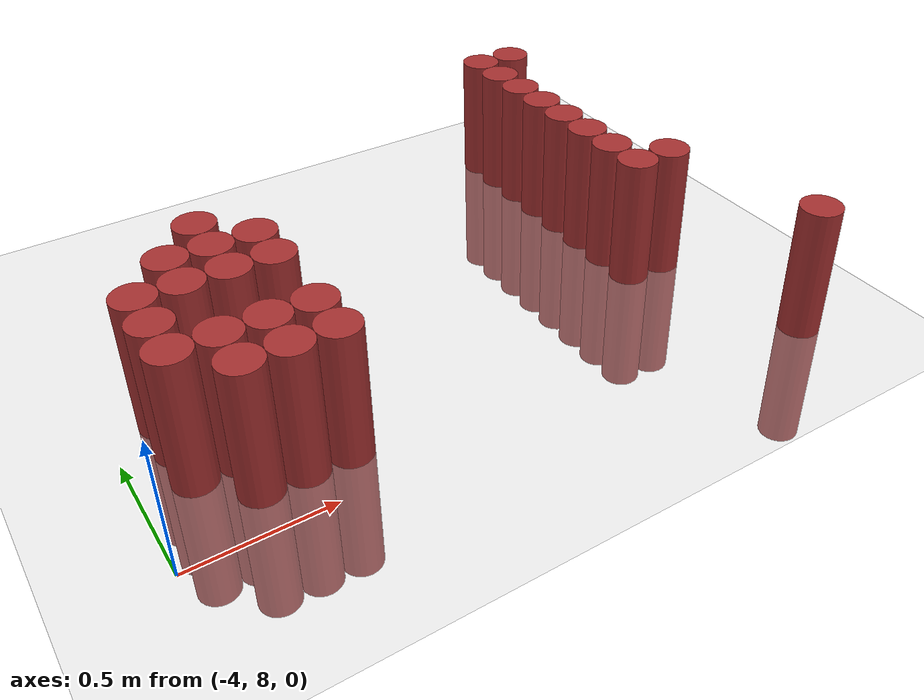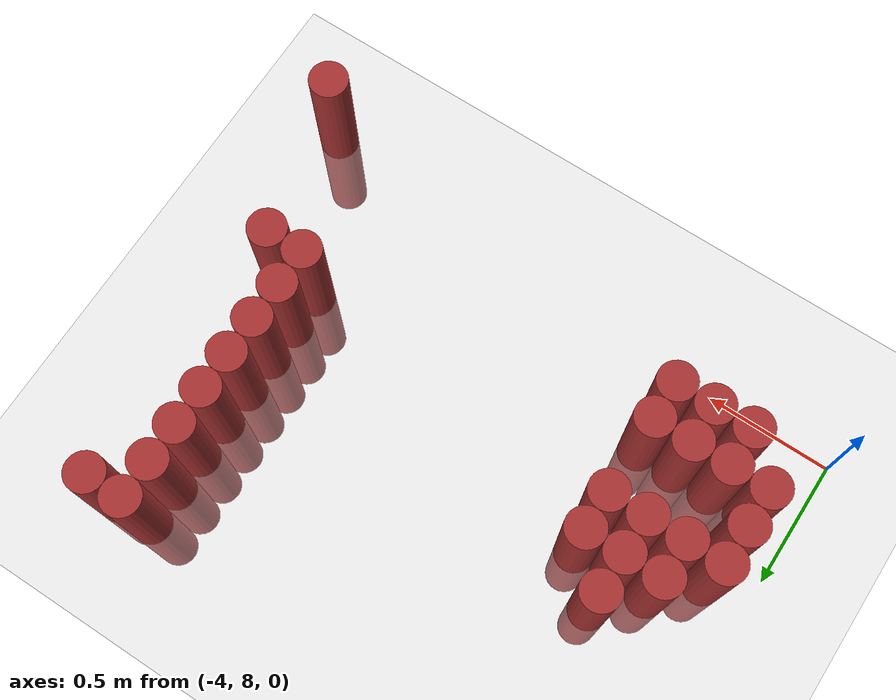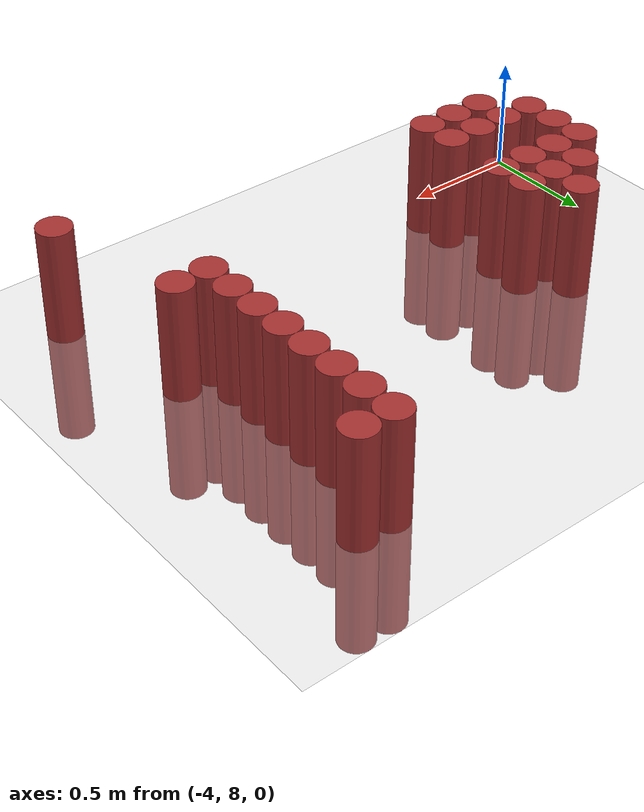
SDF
<sdf version="1.6">
 <world name="default">
  <model name="ground_plane">
   <static>1</static>
   <link name="link">
    <collision name="collision">
     <geometry><plane><normal>0 0 1</normal><size>100 100</size></plane></geometry>
     <surface><friction><ode><mu>100</mu><mu2>50</mu2></ode></friction></surface>
    </collision>
    <visual name="visual">
     <cast_shadows>0</cast_shadows>
     <geometry><plane><normal>0 0 1</normal><size>100 100</size></plane></geometry>
     <material>
      <script><uri>file://media/materials/scripts/gazebo.material</uri><name>Gazebo/Grey</name></script>
     </material>
    </visual>
   </link>
  </model>
  <model name="unit_cylinder_258">
   <static>1</static>
   <pose>-3.825000 8.325000 0.000000 0.000000 0.000000 0.000000</pose>
   <link name="link">
    <inertial>
     <mass>1</mass>
     <inertia><ixx>0.145833</ixx><ixy>0</ixy><ixz>0</ixz><iyy>0.145833</iyy><iyz>0</iyz><izz>0.125</izz></inertia>
    </inertial>
    <collision name="collision">
     <geometry><cylinder><radius>0.075000</radius><length>1</length></cylinder></geometry>
    </collision>
    <visual name="visual">
     <geometry><cylinder><radius>0.075000</radius><length>1</length></cylinder></geometry>
     <material>
      <ambient>0.648000 0.192000 0.192000 1</ambient>
      <diffuse>0.648000 0.192000 0.192000 1</diffuse>
     </material>
     <material>
      <script><name>Gazebo/Grey</name><uri>file://media/materials/scripts/gazebo.material</uri></script>
     </material>
    </visual>
   </link>
  </model>
  <model name="unit_cylinder_259">
   <static>1</static>
   <pose>-3.825000 8.475000 0.000000 0.000000 0.000000 0.000000</pose>
   <link name="link">
    <inertial>
     <mass>1</mass>
     <inertia><ixx>0.145833</ixx><ixy>0</ixy><ixz>0</ixz><iyy>0.145833</iyy><iyz>0</iyz><izz>0.125</izz></inertia>
    </inertial>
    <collision name="collision">
     <geometry><cylinder><radius>0.075000</radius><length>1</length></cylinder></geometry>
    </collision>
    <visual name="visual">
     <geometry><cylinder><radius>0.075000</radius><length>1</length></cylinder></geometry>
     <material>
      <ambient>0.648000 0.192000 0.192000 1</ambient>
      <diffuse>0.648000 0.192000 0.192000 1</diffuse>
     </material>
     <material>
      <script><name>Gazebo/Grey</name><uri>file://media/materials/scripts/gazebo.material</uri></script>
     </material>
    </visual>
   </link>
  </model>
  <model name="unit_cylinder_260">
   <static>1</static>
   <pose>-3.825000 8.625000 0.000000 0.000000 0.000000 0.000000</pose>
   <link name="link">
    <inertial>
     <mass>1</mass>
     <inertia><ixx>0.145833</ixx><ixy>0</ixy><ixz>0</ixz><iyy>0.145833</iyy><iyz>0</iyz><izz>0.125</izz></inertia>
    </inertial>
    <collision name="collision">
     <geometry><cylinder><radius>0.075000</radius><length>1</length></cylinder></geometry>
    </collision>
    <visual name="visual">
     <geometry><cylinder><radius>0.075000</radius><length>1</length></cylinder></geometry>
     <material>
      <ambient>0.648000 0.192000 0.192000 1</ambient>
      <diffuse>0.648000 0.192000 0.192000 1</diffuse>
     </material>
     <material>
      <script><name>Gazebo/Grey</name><uri>file://media/materials/scripts/gazebo.material</uri></script>
     </material>
    </visual>
   </link>
  </model>
  <model name="unit_cylinder_267">
   <static>1</static>
   <pose>-3.675000 8.175000 0.000000 0.000000 0.000000 0.000000</pose>
   <link name="link">
    <inertial>
     <mass>1</mass>
     <inertia><ixx>0.145833</ixx><ixy>0</ixy><ixz>0</ixz><iyy>0.145833</iyy><iyz>0</iyz><izz>0.125</izz></inertia>
    </inertial>
    <collision name="collision">
     <geometry><cylinder><radius>0.075000</radius><length>1</length></cylinder></geometry>
    </collision>
    <visual name="visual">
     <geometry><cylinder><radius>0.075000</radius><length>1</length></cylinder></geometry>
     <material>
      <ambient>0.648000 0.192000 0.192000 1</ambient>
      <diffuse>0.648000 0.192000 0.192000 1</diffuse>
     </material>
     <material>
      <script><name>Gazebo/Grey</name><uri>file://media/materials/scripts/gazebo.material</uri></script>
     </material>
    </visual>
   </link>
  </model>
  <model name="unit_cylinder_268">
   <static>1</static>
   <pose>-3.675000 8.325000 0.000000 0.000000 0.000000 0.000000</pose>
   <link name="link">
    <inertial>
     <mass>1</mass>
     <inertia><ixx>0.145833</ixx><ixy>0</ixy><ixz>0</ixz><iyy>0.145833</iyy><iyz>0</iyz><izz>0.125</izz></inertia>
    </inertial>
    <collision name="collision">
     <geometry><cylinder><radius>0.075000</radius><length>1</length></cylinder></geometry>
    </collision>
    <visual name="visual">
     <geometry><cylinder><radius>0.075000</radius><length>1</length></cylinder></geometry>
     <material>
      <ambient>0.648000 0.192000 0.192000 1</ambient>
      <diffuse>0.648000 0.192000 0.192000 1</diffuse>
     </material>
     <material>
      <script><name>Gazebo/Grey</name><uri>file://media/materials/scripts/gazebo.material</uri></script>
     </material>
    </visual>
   </link>
  </model>
  <model name="unit_cylinder_269">
   <static>1</static>
   <pose>-3.675000 8.625000 0.000000 0.000000 0.000000 0.000000</pose>
   <link name="link">
    <inertial>
     <mass>1</mass>
     <inertia><ixx>0.145833</ixx><ixy>0</ixy><ixz>0</ixz><iyy>0.145833</iyy><iyz>0</iyz><izz>0.125</izz></inertia>
    </inertial>
    <collision name="collision">
     <geometry><cylinder><radius>0.075000</radius><length>1</length></cylinder></geometry>
    </collision>
    <visual name="visual">
     <geometry><cylinder><radius>0.075000</radius><length>1</length></cylinder></geometry>
     <material>
      <ambient>0.648000 0.192000 0.192000 1</ambient>
      <diffuse>0.648000 0.192000 0.192000 1</diffuse>
     </material>
     <material>
      <script><name>Gazebo/Grey</name><uri>file://media/materials/scripts/gazebo.material</uri></script>
     </material>
    </visual>
   </link>
  </model>
  <model name="unit_cylinder_270">
   <static>1</static>
   <pose>-3.675000 8.775000 0.000000 0.000000 0.000000 0.000000</pose>
   <link name="link">
    <inertial>
     <mass>1</mass>
     <inertia><ixx>0.145833</ixx><ixy>0</ixy><ixz>0</ixz><iyy>0.145833</iyy><iyz>0</iyz><izz>0.125</izz></inertia>
    </inertial>
    <collision name="collision">
     <geometry><cylinder><radius>0.075000</radius><length>1</length></cylinder></geometry>
    </collision>
    <visual name="visual">
     <geometry><cylinder><radius>0.075000</radius><length>1</length></cylinder></geometry>
     <material>
      <ambient>0.648000 0.192000 0.192000 1</ambient>
      <diffuse>0.648000 0.192000 0.192000 1</diffuse>
     </material>
     <material>
      <script><name>Gazebo/Grey</name><uri>file://media/materials/scripts/gazebo.material</uri></script>
     </material>
    </visual>
   </link>
  </model>
  <model name="unit_cylinder_273">
   <static>1</static>
   <pose>-3.525000 8.175000 0.000000 0.000000 0.000000 0.000000</pose>
   <link name="link">
    <inertial>
     <mass>1</mass>
     <inertia><ixx>0.145833</ixx><ixy>0</ixy><ixz>0</ixz><iyy>0.145833</iyy><iyz>0</iyz><izz>0.125</izz></inertia>
    </inertial>
    <collision name="collision">
     <geometry><cylinder><radius>0.075000</radius><length>1</length></cylinder></geometry>
    </collision>
    <visual name="visual">
     <geometry><cylinder><radius>0.075000</radius><length>1</length></cylinder></geometry>
     <material>
      <ambient>0.648000 0.192000 0.192000 1</ambient>
      <diffuse>0.648000 0.192000 0.192000 1</diffuse>
     </material>
     <material>
      <script><name>Gazebo/Grey</name><uri>file://media/materials/scripts/gazebo.material</uri></script>
     </material>
    </visual>
   </link>
  </model>
  <model name="unit_cylinder_274">
   <static>1</static>
   <pose>-3.525000 8.325000 0.000000 0.000000 0.000000 0.000000</pose>
   <link name="link">
    <inertial>
     <mass>1</mass>
     <inertia><ixx>0.145833</ixx><ixy>0</ixy><ixz>0</ixz><iyy>0.145833</iyy><iyz>0</iyz><izz>0.125</izz></inertia>
    </inertial>
    <collision name="collision">
     <geometry><cylinder><radius>0.075000</radius><length>1</length></cylinder></geometry>
    </collision>
    <visual name="visual">
     <geometry><cylinder><radius>0.075000</radius><length>1</length></cylinder></geometry>
     <material>
      <ambient>0.648000 0.192000 0.192000 1</ambient>
      <diffuse>0.648000 0.192000 0.192000 1</diffuse>
     </material>
     <material>
      <script><name>Gazebo/Grey</name><uri>file://media/materials/scripts/gazebo.material</uri></script>
     </material>
    </visual>
   </link>
  </model>
  <model name="unit_cylinder_275">
   <static>1</static>
   <pose>-3.525000 8.625000 0.000000 0.000000 0.000000 0.000000</pose>
   <link name="link">
    <inertial>
     <mass>1</mass>
     <inertia><ixx>0.145833</ixx><ixy>0</ixy><ixz>0</ixz><iyy>0.145833</iyy><iyz>0</iyz><izz>0.125</izz></inertia>
    </inertial>
    <collision name="collision">
     <geometry><cylinder><radius>0.075000</radius><length>1</length></cylinder></geometry>
    </collision>
    <visual name="visual">
     <geometry><cylinder><radius>0.075000</radius><length>1</length></cylinder></geometry>
     <material>
      <ambient>0.648000 0.192000 0.192000 1</ambient>
      <diffuse>0.648000 0.192000 0.192000 1</diffuse>
     </material>
     <material>
      <script><name>Gazebo/Grey</name><uri>file://media/materials/scripts/gazebo.material</uri></script>
     </material>
    </visual>
   </link>
  </model>
  <model name="unit_cylinder_276">
   <static>1</static>
   <pose>-3.525000 8.775000 0.000000 0.000000 0.000000 0.000000</pose>
   <link name="link">
    <inertial>
     <mass>1</mass>
     <inertia><ixx>0.145833</ixx><ixy>0</ixy><ixz>0</ixz><iyy>0.145833</iyy><iyz>0</iyz><izz>0.125</izz></inertia>
    </inertial>
    <collision name="collision">
     <geometry><cylinder><radius>0.075000</radius><length>1</length></cylinder></geometry>
    </collision>
    <visual name="visual">
     <geometry><cylinder><radius>0.075000</radius><length>1</length></cylinder></geometry>
     <material>
      <ambient>0.648000 0.192000 0.192000 1</ambient>
      <diffuse>0.648000 0.192000 0.192000 1</diffuse>
     </material>
     <material>
      <script><name>Gazebo/Grey</name><uri>file://media/materials/scripts/gazebo.material</uri></script>
     </material>
    </visual>
   </link>
  </model>
  <model name="unit_cylinder_277">
   <static>1</static>
   <pose>-3.525000 8.925000 0.000000 0.000000 0.000000 0.000000</pose>
   <link name="link">
    <inertial>
     <mass>1</mass>
     <inertia><ixx>0.145833</ixx><ixy>0</ixy><ixz>0</ixz><iyy>0.145833</iyy><iyz>0</iyz><izz>0.125</izz></inertia>
    </inertial>
    <collision name="collision">
     <geometry><cylinder><radius>0.075000</radius><length>1</length></cylinder></geometry>
    </collision>
    <visual name="visual">
     <geometry><cylinder><radius>0.075000</radius><length>1</length></cylinder></geometry>
     <material>
      <ambient>0.648000 0.192000 0.192000 1</ambient>
      <diffuse>0.648000 0.192000 0.192000 1</diffuse>
     </material>
     <material>
      <script><name>Gazebo/Grey</name><uri>file://media/materials/scripts/gazebo.material</uri></script>
     </material>
    </visual>
   </link>
  </model>
  <model name="unit_cylinder_283">
   <static>1</static>
   <pose>-3.375000 8.175000 0.000000 0.000000 0.000000 0.000000</pose>
   <link name="link">
    <inertial>
     <mass>1</mass>
     <inertia><ixx>0.145833</ixx><ixy>0</ixy><ixz>0</ixz><iyy>0.145833</iyy><iyz>0</iyz><izz>0.125</izz></inertia>
    </inertial>
    <collision name="collision">
     <geometry><cylinder><radius>0.075000</radius><length>1</length></cylinder></geometry>
    </collision>
    <visual name="visual">
     <geometry><cylinder><radius>0.075000</radius><length>1</length></cylinder></geometry>
     <material>
      <ambient>0.648000 0.192000 0.192000 1</ambient>
      <diffuse>0.648000 0.192000 0.192000 1</diffuse>
     </material>
     <material>
      <script><name>Gazebo/Grey</name><uri>file://media/materials/scripts/gazebo.material</uri></script>
     </material>
    </visual>
   </link>
  </model>
  <model name="unit_cylinder_284">
   <static>1</static>
   <pose>-3.375000 8.325000 0.000000 0.000000 0.000000 0.000000</pose>
   <link name="link">
    <inertial>
     <mass>1</mass>
     <inertia><ixx>0.145833</ixx><ixy>0</ixy><ixz>0</ixz><iyy>0.145833</iyy><iyz>0</iyz><izz>0.125</izz></inertia>
    </inertial>
    <collision name="collision">
     <geometry><cylinder><radius>0.075000</radius><length>1</length></cylinder></geometry>
    </collision>
    <visual name="visual">
     <geometry><cylinder><radius>0.075000</radius><length>1</length></cylinder></geometry>
     <material>
      <ambient>0.648000 0.192000 0.192000 1</ambient>
      <diffuse>0.648000 0.192000 0.192000 1</diffuse>
     </material>
     <material>
      <script><name>Gazebo/Grey</name><uri>file://media/materials/scripts/gazebo.material</uri></script>
     </material>
    </visual>
   </link>
  </model>
  <model name="unit_cylinder_285">
   <static>1</static>
   <pose>-3.375000 8.625000 0.000000 0.000000 0.000000 0.000000</pose>
   <link name="link">
    <inertial>
     <mass>1</mass>
     <inertia><ixx>0.145833</ixx><ixy>0</ixy><ixz>0</ixz><iyy>0.145833</iyy><iyz>0</iyz><izz>0.125</izz></inertia>
    </inertial>
    <collision name="collision">
     <geometry><cylinder><radius>0.075000</radius><length>1</length></cylinder></geometry>
    </collision>
    <visual name="visual">
     <geometry><cylinder><radius>0.075000</radius><length>1</length></cylinder></geometry>
     <material>
      <ambient>0.648000 0.192000 0.192000 1</ambient>
      <diffuse>0.648000 0.192000 0.192000 1</diffuse>
     </material>
     <material>
      <script><name>Gazebo/Grey</name><uri>file://media/materials/scripts/gazebo.material</uri></script>
     </material>
    </visual>
   </link>
  </model>
  <model name="unit_cylinder_286">
   <static>1</static>
   <pose>-3.375000 8.775000 0.000000 0.000000 0.000000 0.000000</pose>
   <link name="link">
    <inertial>
     <mass>1</mass>
     <inertia><ixx>0.145833</ixx><ixy>0</ixy><ixz>0</ixz><iyy>0.145833</iyy><iyz>0</iyz><izz>0.125</izz></inertia>
    </inertial>
    <collision name="collision">
     <geometry><cylinder><radius>0.075000</radius><length>1</length></cylinder></geometry>
    </collision>
    <visual name="visual">
     <geometry><cylinder><radius>0.075000</radius><length>1</length></cylinder></geometry>
     <material>
      <ambient>0.648000 0.192000 0.192000 1</ambient>
      <diffuse>0.648000 0.192000 0.192000 1</diffuse>
     </material>
     <material>
      <script><name>Gazebo/Grey</name><uri>file://media/materials/scripts/gazebo.material</uri></script>
     </material>
    </visual>
   </link>
  </model>
  <model name="unit_cylinder_296">
   <static>1</static>
   <pose>-2.025000 8.475000 0.000000 0.000000 0.000000 0.000000</pose>
   <link name="link">
    <inertial>
     <mass>1</mass>
     <inertia><ixx>0.145833</ixx><ixy>0</ixy><ixz>0</ixz><iyy>0.145833</iyy><iyz>0</iyz><izz>0.125</izz></inertia>
    </inertial>
    <collision name="collision">
     <geometry><cylinder><radius>0.075000</radius><length>1</length></cylinder></geometry>
    </collision>
    <visual name="visual">
     <geometry><cylinder><radius>0.075000</radius><length>1</length></cylinder></geometry>
     <material>
      <ambient>0.648000 0.192000 0.192000 1</ambient>
      <diffuse>0.648000 0.192000 0.192000 1</diffuse>
     </material>
     <material>
      <script><name>Gazebo/Grey</name><uri>file://media/materials/scripts/gazebo.material</uri></script>
     </material>
    </visual>
   </link>
  </model>
  <model name="unit_cylinder_297">
   <static>1</static>
   <pose>-2.025000 8.625000 0.000000 0.000000 0.000000 0.000000</pose>
   <link name="link">
    <inertial>
     <mass>1</mass>
     <inertia><ixx>0.145833</ixx><ixy>0</ixy><ixz>0</ixz><iyy>0.145833</iyy><iyz>0</iyz><izz>0.125</izz></inertia>
    </inertial>
    <collision name="collision">
     <geometry><cylinder><radius>0.075000</radius><length>1</length></cylinder></geometry>
    </collision>
    <visual name="visual">
     <geometry><cylinder><radius>0.075000</radius><length>1</length></cylinder></geometry>
     <material>
      <ambient>0.648000 0.192000 0.192000 1</ambient>
      <diffuse>0.648000 0.192000 0.192000 1</diffuse>
     </material>
     <material>
      <script><name>Gazebo/Grey</name><uri>file://media/materials/scripts/gazebo.material</uri></script>
     </material>
    </visual>
   </link>
  </model>
  <model name="unit_cylinder_298">
   <static>1</static>
   <pose>-2.025000 8.775000 0.000000 0.000000 0.000000 0.000000</pose>
   <link name="link">
    <inertial>
     <mass>1</mass>
     <inertia><ixx>0.145833</ixx><ixy>0</ixy><ixz>0</ixz><iyy>0.145833</iyy><iyz>0</iyz><izz>0.125</izz></inertia>
    </inertial>
    <collision name="collision">
     <geometry><cylinder><radius>0.075000</radius><length>1</length></cylinder></geometry>
    </collision>
    <visual name="visual">
     <geometry><cylinder><radius>0.075000</radius><length>1</length></cylinder></geometry>
     <material>
      <ambient>0.648000 0.192000 0.192000 1</ambient>
      <diffuse>0.648000 0.192000 0.192000 1</diffuse>
     </material>
     <material>
      <script><name>Gazebo/Grey</name><uri>file://media/materials/scripts/gazebo.material</uri></script>
     </material>
    </visual>
   </link>
  </model>
  <model name="unit_cylinder_299">
   <static>1</static>
   <pose>-2.025000 8.925000 0.000000 0.000000 0.000000 0.000000</pose>
   <link name="link">
    <inertial>
     <mass>1</mass>
     <inertia><ixx>0.145833</ixx><ixy>0</ixy><ixz>0</ixz><iyy>0.145833</iyy><iyz>0</iyz><izz>0.125</izz></inertia>
    </inertial>
    <collision name="collision">
     <geometry><cylinder><radius>0.075000</radius><length>1</length></cylinder></geometry>
    </collision>
    <visual name="visual">
     <geometry><cylinder><radius>0.075000</radius><length>1</length></cylinder></geometry>
     <material>
      <ambient>0.648000 0.192000 0.192000 1</ambient>
      <diffuse>0.648000 0.192000 0.192000 1</diffuse>
     </material>
     <material>
      <script><name>Gazebo/Grey</name><uri>file://media/materials/scripts/gazebo.material</uri></script>
     </material>
    </visual>
   </link>
  </model>
  <model name="unit_cylinder_300">
   <static>1</static>
   <pose>-2.025000 9.075000 0.000000 0.000000 0.000000 0.000000</pose>
   <link name="link">
    <inertial>
     <mass>1</mass>
     <inertia><ixx>0.145833</ixx><ixy>0</ixy><ixz>0</ixz><iyy>0.145833</iyy><iyz>0</iyz><izz>0.125</izz></inertia>
    </inertial>
    <collision name="collision">
     <geometry><cylinder><radius>0.075000</radius><length>1</length></cylinder></geometry>
    </collision>
    <visual name="visual">
     <geometry><cylinder><radius>0.075000</radius><length>1</length></cylinder></geometry>
     <material>
      <ambient>0.648000 0.192000 0.192000 1</ambient>
      <diffuse>0.648000 0.192000 0.192000 1</diffuse>
     </material>
     <material>
      <script><name>Gazebo/Grey</name><uri>file://media/materials/scripts/gazebo.material</uri></script>
     </material>
    </visual>
   </link>
  </model>
  <model name="unit_cylinder_301">
   <static>1</static>
   <pose>-2.025000 9.225000 0.000000 0.000000 0.000000 0.000000</pose>
   <link name="link">
    <inertial>
     <mass>1</mass>
     <inertia><ixx>0.145833</ixx><ixy>0</ixy><ixz>0</ixz><iyy>0.145833</iyy><iyz>0</iyz><izz>0.125</izz></inertia>
    </inertial>
    <collision name="collision">
     <geometry><cylinder><radius>0.075000</radius><length>1</length></cylinder></geometry>
    </collision>
    <visual name="visual">
     <geometry><cylinder><radius>0.075000</radius><length>1</length></cylinder></geometry>
     <material>
      <ambient>0.648000 0.192000 0.192000 1</ambient>
      <diffuse>0.648000 0.192000 0.192000 1</diffuse>
     </material>
     <material>
      <script><name>Gazebo/Grey</name><uri>file://media/materials/scripts/gazebo.material</uri></script>
     </material>
    </visual>
   </link>
  </model>
  <model name="unit_cylinder_302">
   <static>1</static>
   <pose>-2.025000 9.375000 0.000000 0.000000 0.000000 0.000000</pose>
   <link name="link">
    <inertial>
     <mass>1</mass>
     <inertia><ixx>0.145833</ixx><ixy>0</ixy><ixz>0</ixz><iyy>0.145833</iyy><iyz>0</iyz><izz>0.125</izz></inertia>
    </inertial>
    <collision name="collision">
     <geometry><cylinder><radius>0.075000</radius><length>1</length></cylinder></geometry>
    </collision>
    <visual name="visual">
     <geometry><cylinder><radius>0.075000</radius><length>1</length></cylinder></geometry>
     <material>
      <ambient>0.648000 0.192000 0.192000 1</ambient>
      <diffuse>0.648000 0.192000 0.192000 1</diffuse>
     </material>
     <material>
      <script><name>Gazebo/Grey</name><uri>file://media/materials/scripts/gazebo.material</uri></script>
     </material>
    </visual>
   </link>
  </model>
  <model name="unit_cylinder_303">
   <static>1</static>
   <pose>-2.025000 9.525000 0.000000 0.000000 0.000000 0.000000</pose>
   <link name="link">
    <inertial>
     <mass>1</mass>
     <inertia><ixx>0.145833</ixx><ixy>0</ixy><ixz>0</ixz><iyy>0.145833</iyy><iyz>0</iyz><izz>0.125</izz></inertia>
    </inertial>
    <collision name="collision">
     <geometry><cylinder><radius>0.075000</radius><length>1</length></cylinder></geometry>
    </collision>
    <visual name="visual">
     <geometry><cylinder><radius>0.075000</radius><length>1</length></cylinder></geometry>
     <material>
      <ambient>0.648000 0.192000 0.192000 1</ambient>
      <diffuse>0.648000 0.192000 0.192000 1</diffuse>
     </material>
     <material>
      <script><name>Gazebo/Grey</name><uri>file://media/materials/scripts/gazebo.material</uri></script>
     </material>
    </visual>
   </link>
  </model>
  <model name="unit_cylinder_307">
   <static>1</static>
   <pose>-1.875000 8.475000 0.000000 0.000000 0.000000 0.000000</pose>
   <link name="link">
    <inertial>
     <mass>1</mass>
     <inertia><ixx>0.145833</ixx><ixy>0</ixy><ixz>0</ixz><iyy>0.145833</iyy><iyz>0</iyz><izz>0.125</izz></inertia>
    </inertial>
    <collision name="collision">
     <geometry><cylinder><radius>0.075000</radius><length>1</length></cylinder></geometry>
    </collision>
    <visual name="visual">
     <geometry><cylinder><radius>0.075000</radius><length>1</length></cylinder></geometry>
     <material>
      <ambient>0.648000 0.192000 0.192000 1</ambient>
      <diffuse>0.648000 0.192000 0.192000 1</diffuse>
     </material>
     <material>
      <script><name>Gazebo/Grey</name><uri>file://media/materials/scripts/gazebo.material</uri></script>
     </material>
    </visual>
   </link>
  </model>
  <model name="unit_cylinder_308">
   <static>1</static>
   <pose>-1.875000 9.525000 0.000000 0.000000 0.000000 0.000000</pose>
   <link name="link">
    <inertial>
     <mass>1</mass>
     <inertia><ixx>0.145833</ixx><ixy>0</ixy><ixz>0</ixz><iyy>0.145833</iyy><iyz>0</iyz><izz>0.125</izz></inertia>
    </inertial>
    <collision name="collision">
     <geometry><cylinder><radius>0.075000</radius><length>1</length></cylinder></geometry>
    </collision>
    <visual name="visual">
     <geometry><cylinder><radius>0.075000</radius><length>1</length></cylinder></geometry>
     <material>
      <ambient>0.648000 0.192000 0.192000 1</ambient>
      <diffuse>0.648000 0.192000 0.192000 1</diffuse>
     </material>
     <material>
      <script><name>Gazebo/Grey</name><uri>file://media/materials/scripts/gazebo.material</uri></script>
     </material>
    </visual>
   </link>
  </model>
  <model name="unit_cylinder_326">
   <static>1</static>
   <pose>-1.725000 7.875000 0.000000 0.000000 0.000000 0.000000</pose>
   <link name="link">
    <inertial>
     <mass>1</mass>
     <inertia><ixx>0.145833</ixx><ixy>0</ixy><ixz>0</ixz><iyy>0.145833</iyy><iyz>0</iyz><izz>0.125</izz></inertia>
    </inertial>
    <collision name="collision">
     <geometry><cylinder><radius>0.075000</radius><length>1</length></cylinder></geometry>
    </collision>
    <visual name="visual">
     <geometry><cylinder><radius>0.075000</radius><length>1</length></cylinder></geometry>
     <material>
      <ambient>0.648000 0.192000 0.192000 1</ambient>
      <diffuse>0.648000 0.192000 0.192000 1</diffuse>
     </material>
     <material>
      <script><name>Gazebo/Grey</name><uri>file://media/materials/scripts/gazebo.material</uri></script>
     </material>
    </visual>
   </link>
  </model>
 </world>
</sdf>
